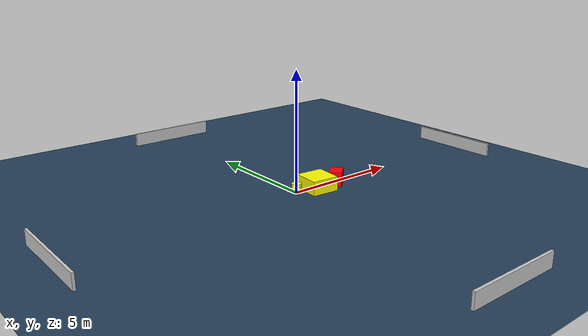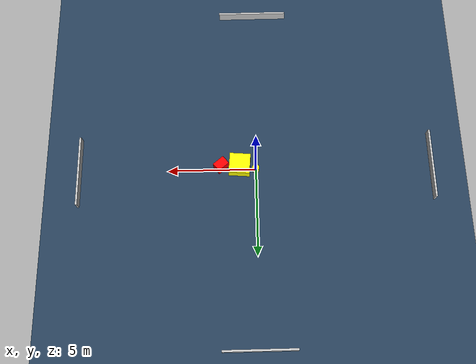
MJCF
<?xml version="1.0" ?>
<mujoco model="generated_environment">
  <option timestep="0.01" integrator="RK4" cone="elliptic"/>
  <default>
    <geom density="1"/>
  </default>
  <asset>
    <texture builtin="gradient" height="3072" name="skybox" rgb1="0.3 0.5 0.7" rgb2="0 0 0" type="skybox" width="512"/>
    <texture builtin="checker" height="300" name="groundplane" rgb1="0.2 0.3 0.4" rgb2="0.1 0.2 0.3" type="2d" width="300"/>
    <material name="groundplane" reflectance="0.2" texrepeat="5 5" texture="groundplane"/>
  </asset>
  <worldbody>
    <light dir="0 0 -1" directional="true" pos="0 0 1.5"/>
    <geom condim="3" friction="0.5 0.005 0.001" material="groundplane" name="floor" pos="0 0 0" size="0 0 0.05" type="plane"/>
    <body name="walls">
      <geom name="wall_1" condim="4" pos="-10.0 0.0 0.3" rgba="0.800000011920929 0.800000011920929 0.800000011920929 1.0" size="0.05 2.0 0.3" type="box"/>
      <geom name="wall_2" condim="4" pos="10.0 0.0 0.3" rgba="0.800000011920929 0.800000011920929 0.800000011920929 1.0" size="0.05 2.0 0.3" type="box"/>
      <geom name="wall_3" condim="4" pos="0.0 -10.0 0.3" rgba="0.800000011920929 0.800000011920929 0.800000011920929 1.0" size="2.0 0.05 0.3" type="box"/>
      <geom name="wall_4" condim="4" pos="0.0 10.0 0.3" rgba="0.800000011920929 0.800000011920929 0.800000011920929 1.0" size="2.0 0.05 0.3" type="box"/>
    </body>
    <body name="robot">
      <joint name="joint_x" type="slide" pos="0 0 0" axis="1 0 0"/>
      <joint name="joint_y" type="slide" pos="0 0 0" axis="0 1 0"/>
      <geom name="robot" type="cylinder" pos="0.0 0.0 0.2" size="0.2 0.2 0.0" mass="5.0" friction="1.0 0.005 0.0001" condim="4" rgba="1.0 1.0 0.0 1.0"/>
    </body>
    <body name="obstacle_1_movable">
      <geom name="obstacle_1_movable" condim="4" pos="0.912795270295676 -0.22439573886717049 0.3" euler="0 0 85.33179206781776" friction="0.0 0.005 0.001" rgba="1.0 1.0 0.0 1.0" size="0.5801423600029252 0.5905880254028408 0.3" type="box" mass="0.1"/>
      <joint type="free"/>
    </body>
    <body name="obstacle_2_static">
      <geom name="obstacle_2_static" condim="4" pos="1.9652978915781794 -0.2213140143900205 0.3" euler="0 0 309.3890033648671" friction="0.0 0.005 0.001" rgba="1.0 0.0 0.0 1.0" size="0.2635300376267611 0.3663916817967645 0.3" type="box"/>
    </body>
  </worldbody>
  <actuator>
    <motor name="actuator_x" joint="joint_x" gear="1" ctrlrange="-1 1"/>
    <motor name="actuator_y" joint="joint_y" gear="1" ctrlrange="-1 1"/>
  </actuator>
</mujoco>
